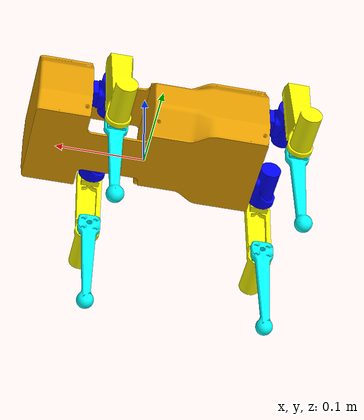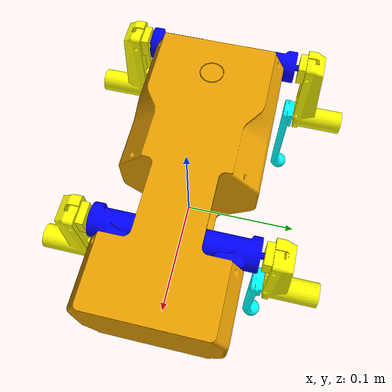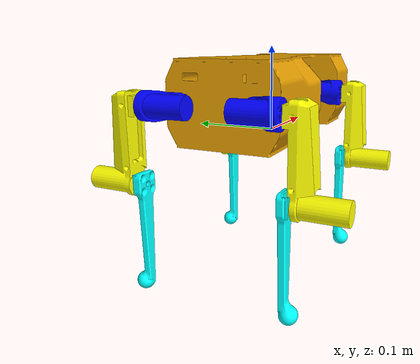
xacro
<?xml version="1.0"?>

<robot name = "pupper" xmlns:xacro="http://www.ros.org/wiki/xacro">

    <xacro:property name = "full_urdf" value = "true"/>

    <xacro:if value = "${full_urdf}">
    <xacro:include filename = "$(find workstation)/pupper_description/colors.xacro"/>
    </xacro:if>

    <xacro:include filename = "$(find workstation)/pupper_description/motor.xacro"/>
    <xacro:include filename = "$(find workstation)/pupper_description/left_leg.xacro"/>
    <xacro:include filename = "$(find workstation)/pupper_description/right_leg.xacro"/>

    <xacro:property name = "PI"            value = "3.14159265359"/>
    <xacro:property name = "VisualPath"    value = "package://workstation/pupper_description/Pupper_STL"/>
    <xacro:property name = "CollisionPath" value = "package://workstation/pupper_description/Pupper_STL"/>

    <!-- Conversions -->
    <xacro:property name = "meshScale_mm"  value = "0.001 0.001 0.001"/>
    <xacro:property name = "meshScale_in"  value = "0.0254 0.0254 0.0254"/>
    <xacro:property name = "meshScale_meters"  value = "1.0 1.0 1.0"/>
    <xacro:property name = "mm2m"  value = "0.001"/>

    <!-- Convert inertia from g*mm^2 to kg*m^2 -->
    <xacro:macro name = "scaleMMOI" params = "ixx iyy izz ixy ixz iyz">
        <xacro:property name = "kConvert" value = "${1e-9}"/>
        <inertia ixx = "${ixx*kConvert}" iyy = "${iyy*kConvert}" izz = "${izz*kConvert}"
                 ixy = "${ixy*kConvert}" iyz = "${iyz*kConvert}" ixz = "${ixz*kConvert}"/>
    </xacro:macro>

    <!-- Convert grams to kilograms -->
    <xacro:macro name = "scaleMass" params = "mass">
        <mass value = "${mass * 0.001}"/>
    </xacro:macro>

    <!-- Convert origin in mm to m-->
    <xacro:macro name = "scaleOrigin" params = "x y z">
        <origin xyz = "${x * mm2m} ${y * mm2m} ${z * mm2m}" rpy = "0 0 0"/>
    </xacro:macro>

    <!-- MEASURED / ESTIMATED PROPERTIES -->
    <!-- Estimated rotor inertia - note Gazebo will unfortunately propagate the inertia to the parent links
         but its the closest we can get to modeling the reflected inertia of the gear box/ rotor-->
    <xacro:property name = "rotor_inertia" value = "${0.0028 * 1e9}"/> <!-- (g*mm^2) -->

    <!-- MASS PROPERTIES FROM SOLIDWORKS -->

    <!-- Bottom PCB -->
    <xacro:property name = "bottom_PCB_mass" value = "1086.5"/> <!-- (g) (lumped with all fixed bodies) -->

    <xacro:property name = "bottom_PCB_com_x" value = "-16.46"/> <!-- (mm) -->
    <xacro:property name = "bottom_PCB_com_y" value = "0"/>
    <xacro:property name = "bottom_PCB_com_z" value = "37.53"/>

    <xacro:property name = "bottom_PCB_ixx" value = "1919398.64"/> <!-- (g*mm^2) -->
    <xacro:property name = "bottom_PCB_iyy" value = "8759021.12"/>
    <xacro:property name = "bottom_PCB_izz" value = "9498546.46"/>
    <xacro:property name = "bottom_PCB_ixy" value = "235.71"/>
    <xacro:property name = "bottom_PCB_ixz" value = "1884.89"/>
    <xacro:property name = "bottom_PCB_iyz" value = "10.99"/>

    <!-- Left Hub -->
    <xacro:property name = "left_hub_mass" value = "109.8"/>

    <xacro:property name = "left_hub_com_x" value = "-29"/> <!-- (mm) -->
    <xacro:property name = "left_hub_com_y" value = "0.31"/>
    <xacro:property name = "left_hub_com_z" value = "0"/>

    <xacro:property name = "left_hub_ixx" value = "${23576.71 + rotor_inertia}"/> <!-- (g*mm^2) -->
    <xacro:property name = "left_hub_iyy" value = "12321.79"/>
    <xacro:property name = "left_hub_izz" value = "27265.99"/>
    <xacro:property name = "left_hub_ixy" value = "-34.26"/>
    <xacro:property name = "left_hub_ixz" value = "-0.01"/>
    <xacro:property name = "left_hub_iyz" value = "0.01"/>

    <!-- Right Hub -->
    <xacro:property name = "right_hub_mass" value = "109.8"/>

    <xacro:property name = "right_hub_com_x" value = "-29"/> <!-- (mm) -->
    <xacro:property name = "right_hub_com_y" value = "-0.31"/>
    <xacro:property name = "right_hub_com_z" value = "0"/>

    <xacro:property name = "right_hub_ixx" value = "${23576.71  + rotor_inertia}"/> <!-- (g*mm^2) -->
    <xacro:property name = "right_hub_iyy" value = "12321.79"/>
    <xacro:property name = "right_hub_izz" value = "27265.99"/>
    <xacro:property name = "right_hub_ixy" value = "-34.26"/>
    <xacro:property name = "right_hub_ixz" value = "-0.01"/>
    <xacro:property name = "right_hub_iyz" value = "-0.02"/>

    <!-- Left Upper Link -->
    <xacro:property name = "left_upper_link_mass" value = "143.55"/>

    <xacro:property name = "left_upper_link_com_x" value = "0"/> <!-- (mm) -->
    <xacro:property name = "left_upper_link_com_y" value = "36.76"/>
    <xacro:property name = "left_upper_link_com_z" value = "-59.83"/>

    <xacro:property name = "left_upper_link_ixx" value = "171730.23"/> <!-- (g*mm^2) -->
    <xacro:property name = "left_upper_link_iyy" value = "141191.83"/>
    <xacro:property name = "left_upper_link_izz" value = "43033.83"/>
    <xacro:property name = "left_upper_link_ixy" value = "0.01"/>
    <xacro:property name = "left_upper_link_ixz" value = "-0.06"/>
    <xacro:property name = "left_upper_link_iyz" value = "45763.54"/>

    <!-- Right Upper Link -->
    <xacro:property name = "right_upper_link_mass" value = "143.55"/>

    <xacro:property name = "right_upper_link_com_x" value = "0"/> <!-- (mm) -->
    <xacro:property name = "right_upper_link_com_y" value = "-36.76"/>
    <xacro:property name = "right_upper_link_com_z" value = "-59.83"/>

    <xacro:property name = "right_upper_link_ixx" value = "171730.23"/> <!-- (g*mm^2) -->
    <xacro:property name = "right_upper_link_iyy" value = "141191.83"/>
    <xacro:property name = "right_upper_link_izz" value = "43033.83"/>
    <xacro:property name = "right_upper_link_ixy" value = "0.01"/>
    <xacro:property name = "right_upper_link_ixz" value = "0.06"/>
    <xacro:property name = "right_upper_link_iyz" value = "-45763.54"/>

    <!-- Left Lower Link -->
    <xacro:property name = "left_lower_link_mass" value = "21.00"/>

    <xacro:property name = "left_lower_link_com_x" value = "-0.22"/> <!-- (mm) -->
    <xacro:property name = "left_lower_link_com_y" value = "-12.19"/>
    <xacro:property name = "left_lower_link_com_z" value = "-33.35"/>

    <xacro:property name = "left_lower_link_ixx" value = "43753.77"/> <!-- (g*mm^2) -->
    <xacro:property name = "left_lower_link_iyy" value = "${44138.15  + rotor_inertia}"/>
    <xacro:property name = "left_lower_link_izz" value = "856.89"/>
    <xacro:property name = "left_lower_link_ixy" value = "12.76"/>
    <xacro:property name = "left_lower_link_ixz" value = "-359.76"/>
    <xacro:property name = "left_lower_link_iyz" value = "456.47"/>

    <!-- Right Lower Link -->
    <xacro:property name = "right_lower_link_mass" value = "21.00"/>

    <xacro:property name = "right_lower_link_com_x" value = "-0.22"/> <!-- (mm) -->
    <xacro:property name = "right_lower_link_com_y" value = "12.19"/>
    <xacro:property name = "right_lower_link_com_z" value = "-33.35"/>

    <xacro:property name = "right_lower_link_ixx" value = "43753.05"/> <!-- (g*mm^2) -->
    <xacro:property name = "right_lower_link_iyy" value = "${44137.54  + rotor_inertia}"/>
    <xacro:property name = "right_lower_link_izz" value = "856.82"/>
    <xacro:property name = "right_lower_link_ixy" value = "-12.74"/>
    <xacro:property name = "right_lower_link_ixz" value = "-360.13"/>
    <xacro:property name = "right_lower_link_iyz" value = "-455.13"/>

    <!-- Battery mass -->
    <!-- Battery location in x of bottom_PCB frame (m)-->

    <!-- KINEMATIC PROPERTIES FROM SOLIDWORKS -->

    <xacro:property name="back_left_hub_relative_origin">
        <xacro:scaleOrigin x = "-122.00" y = "47" z = "43.5"/>
    </xacro:property>
    <!-- Other origins hard coded ... -->

    <!-- SIMULATION SETTINGS -->

    <xacro:property name = "contact_kp">
        <kp>1e6</kp>
    </xacro:property>
    <xacro:property name = "contact_kd">
        <kd>1</kd>
    </xacro:property>
    <xacro:property name = "joint_friction">
        <dynamics damping = "0.001" friction = "0.17"/>
    </xacro:property>
    <!-- Connect the plugin -->
    <gazebo>
        <plugin filename = "libpupper_plugin.so" name = "pupper_plugin"/>
    </gazebo>

    <!-- ROBOT START HERE -->

    <!-- Base link of the robot -->
    <link name = "bottom_PCB">
        <inertial>
            <xacro:scaleOrigin  x = "${bottom_PCB_com_x}"
                                y = "${bottom_PCB_com_y}"
                                z = "${bottom_PCB_com_z}"/>
            <xacro:scaleMass mass = "${bottom_PCB_mass}"/>
            <xacro:scaleMMOI ixx  = "${bottom_PCB_ixx}"
                             iyy  = "${bottom_PCB_iyy}"
                             izz  = "${bottom_PCB_izz}"
                             ixy  = "${bottom_PCB_ixy}"
                             ixz  = "${bottom_PCB_ixz}"
                             iyz  = "${bottom_PCB_iyz}" />
        </inertial>

        <xacro:if value = "${full_urdf}">
        <visual name = "bottom_PCB_visual">
            <geometry>
                <mesh filename = "${VisualPath}/Body/assembly_body_STL.stl" scale = "${meshScale_meters}"/>
            </geometry>
        </visual>

        <collision name = "bottom_PCB_collision">
            <origin xyz = "0.0 0.0 0.04355" rpy = "0 0 0"/>
            <geometry>
                <box size = "0.264 0.124 0.0901"/>
            </geometry>
        </collision>
        </xacro:if>
    </link>

    <!-- Connect battery to bottom PCB -->

    <!-- back left leg -->
    <xacro:leftLeg name = "back" parent = "bottom_PCB">
        <xacro:insert_block name = "back_left_hub_relative_origin"/>
        <origin xyz = "-0.0315 0.0215 0" rpy = "0 0 0"/>
        <origin xyz = "0 0.023 -0.080" rpy = "0 0 0"/>
    </xacro:leftLeg>

    <!-- back right leg-->
    <xacro:rightLeg name = "back" parent = "bottom_PCB">
        <origin xyz = "-0.122 -0.047 0.0435" rpy = "0 0 0"/>
        <origin xyz = "-0.0315 -0.0215 0" rpy = "0 0 0"/>
        <origin xyz = "0 -0.023 -0.080" rpy = "0 0 0"/>
    </xacro:rightLeg>

    <!-- front left leg -->
    <xacro:leftLeg name = "front" parent = "bottom_PCB">
        <origin xyz = "0.078 0.047 0.0435" rpy = "0 0 0"/>
        <origin xyz = "-0.0315 0.0215 0" rpy = "0 0 0"/>
        <origin xyz = "0 0.023 -0.080" rpy = "0 0 0"/>
    </xacro:leftLeg>

    <!-- front right leg -->
    <xacro:rightLeg name = "front" parent = "bottom_PCB">
        <origin xyz = "0.078 -0.047 0.0435" rpy = "0 0 0"/>
        <origin xyz = "-0.0315 -0.0215 0" rpy = "0 0 0"/>
        <origin xyz = "0 -0.023 -0.080" rpy = "0 0 0"/>
    </xacro:rightLeg>

</robot>

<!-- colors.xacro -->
<robot name = "common_colors" xmlns:xacro="http://www.ros.org/wiki/xacro">

<material name = "red">
    <color rgba = "1 0 0 1"/>
</material>

<material name = "yellow">
    <color rgba = "1 1 0 1"/>
</material>

<material name = "blue">
    <color rgba = "0 0 1 1"/>
</material>

<material name = "green">
    <color rgba = "0 1 0 1"/>
</material>

<material name = "blueGreen">
    <color rgba = "0 1 1 1"/>
</material>

<material name = "pink">
    <color rgba = "1 0 1 1"/>
</material>

</robot>

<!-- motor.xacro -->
<robot name = "motorXacro" xmlns:xacro="http://www.ros.org/wiki/xacro">

    <xacro:macro name = "motor" params = "name axis fixed_parent revolute_child *revolute_origin">

        <!-- Attach the child link through a revolute joint -->
        <joint name = "${name}_joint" type = "revolute">
            <parent link = "${fixed_parent}"/>
            <child  link = "${revolute_child}"/>
            <xacro:insert_block name = "revolute_origin"/> <!-- transformation from parent origin to child origin -->
            <limit upper = "1e10" lower = "-1e10" effort = "1e6" velocity = "1e6"/>
            <xacro:insert_block name = "joint_friction"/>
            <axis xyz = "${axis}"/>
        </joint>

        <xacro:if value = "${full_urdf}">
        <!-- implicitSpringDamper: prevent crashing when damping is set -->
        <!-- provideFeedback     : allows the joint to publish torque data -->
        <gazebo reference = "${name}_joint">
            <physics>
                <ode>
                    <max_force>50</max_force>
                </ode>
            </physics>
            <provideFeedback>true</provideFeedback>
            <implicitSpringDamper>true</implicitSpringDamper>
        </gazebo>

        <gazebo reference = "${revolute_child}">
            <self_collide>false</self_collide>
        </gazebo>
        </xacro:if>

    </xacro:macro>

</robot>

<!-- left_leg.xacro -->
<robot name = "left_leg_macro" xmlns:xacro="http://www.ros.org/wiki/xacro">

    <!-- Macro for the creation of a leg -->
    <!-- hub_relative_origin is the origin of the hub relative to its parent's origin (the bottom_PCB in this case)
         similarly for the other parts of upper_link and lower_link-->
    <xacro:macro name = "leftLeg" params = "name parent *hub_relative_origin *upper_link_relative_origin *lower_link_relative_origin">

        <!-- Create hub that connects to the motor -->
        <xacro:property name = "hubName" value = "${name}_left_hub"/>
        <link name = "${hubName}">
            <inertial>
                <xacro:scaleOrigin  x = "${left_hub_com_x}"
                                    y = "${left_hub_com_y}"
                                    z = "${left_hub_com_z}"/>
                <xacro:scaleMass mass = "${left_hub_mass}"/>
                <xacro:scaleMMOI ixx  = "${left_hub_ixx}"
                                 iyy  = "${left_hub_iyy}"
                                 izz  = "${left_hub_izz}"
                                 ixy  = "${left_hub_ixy}"
                                 ixz  = "${left_hub_ixz}"
                                 iyz  = "${left_hub_iyz}" />
            </inertial>

            <xacro:if value = "${full_urdf}">
            <visual name = "${hubName}_visual">
                <material name = "blue"/>
                <geometry>
                    <mesh filename = "${VisualPath}/Leg/assembly_hip_left_STL.stl" scale = "${meshScale_meters}"/>
                </geometry>
            </visual>

            </xacro:if>
        </link>

        <!-- Create the upper link portion (the thigh, if you will) -->
        <xacro:property name = "upperName" value = "${name}_left_upper_link"/>
        <link name = "${upperName}">
            <inertial>
                <xacro:scaleOrigin  x = "${left_upper_link_com_x}"
                                    y = "${left_upper_link_com_y}"
                                    z = "${left_upper_link_com_z}"/>
                <xacro:scaleMass mass = "${left_upper_link_mass}"/>
                <xacro:scaleMMOI ixx  = "${left_upper_link_ixx}"
                                 iyy  = "${left_upper_link_iyy}"
                                 izz  = "${left_upper_link_izz}"
                                 ixy  = "${left_upper_link_ixy}"
                                 ixz  = "${left_upper_link_ixz}"
                                 iyz  = "${left_upper_link_iyz}" />
            </inertial>

            <xacro:if value = "${full_urdf}">
            <visual name = "${upperName}_visual">
                <material name = "yellow"/>
                <geometry>
                    <mesh filename = "${VisualPath}/Leg/assembly_upper_link_left_STL.stl" scale = "${meshScale_meters}"/>
                </geometry>
            </visual>

            <collision name = "${upperName}_collision">
                <origin xyz = "0.0 0.0233 -0.080" rpy = "${PI/2} 0 0"/>
                <geometry>
                    <cylinder radius = "0.0095" length = "0.045"/>
                </geometry>
            </collision>
            </xacro:if>
        </link>

        <!-- Create the lower link -->
        <xacro:property name = "lowerName" value = "${name}_left_lower_link"/>

        <link name = "${lowerName}">
            <inertial>
                <xacro:scaleOrigin  x = "${left_lower_link_com_x}"
                                    y = "${left_lower_link_com_y}"
                                    z = "${left_lower_link_com_z}"/>
                <xacro:scaleMass mass = "${left_lower_link_mass}"/>
                <xacro:scaleMMOI ixx  = "${left_lower_link_ixx}"
                                 iyy  = "${left_lower_link_iyy}"
                                 izz  = "${left_lower_link_izz}"
                                 ixy  = "${left_lower_link_ixy}"
                                 ixz  = "${left_lower_link_ixz}"
                                 iyz  = "${left_lower_link_iyz}" />
            </inertial>

            <xacro:if value = "${full_urdf}">
            <visual>
                <material name = "blueGreen"/>
                <geometry>
                    <mesh filename = "${VisualPath}/Leg/assembly_lower_link_left_STL.stl" scale = "${meshScale_meters}"/>
                </geometry>
            </visual>

            <collision name = "${lowerName}_collision">
                <origin xyz = "0.0 -0.0095 -.11" />
                <geometry>
                    <box size = "0.00001 0.00001 0.00001"/>
                </geometry>
            </collision>
            </xacro:if>
        </link>

        <xacro:if value = "${full_urdf}">
        <gazebo reference="${name}_left_lower_link">
            <collision>
                <surface>
                    <contact>
                        <ode>
                            <xacro:insert_block name = "contact_kp" />
                            <xacro:insert_block name = "contact_kd" />
                        </ode>
                    </contact>
                    <friction>
                        <ode>
                            <mu>0.9</mu> <!--floor friction-->
                            <mu2>0.9</mu2>
                        </ode>
                    </friction>
                </surface>
            </collision>
        </gazebo>
        </xacro:if>

        <!-- Connect leg to parent with a motor -->
        <xacro:motor name = "${name}_left_hip" axis = "-1 0 0" fixed_parent = "${parent}" revolute_child = "${hubName}">
            <xacro:insert_block name = "hub_relative_origin"/>
        </xacro:motor>

        <!-- Join the Hub and the Upper Link with a motor -->
        <xacro:motor name = "${name}_left_shoulder" axis = "0 1 0" fixed_parent = "${hubName}" revolute_child = "${upperName}">
            <xacro:insert_block name = "upper_link_relative_origin"/>
        </xacro:motor>

        <!-- Connect Upper Link and Lower Link with a motor -->
        <xacro:motor name = "${name}_left_elbow" axis = "0 -1 0" fixed_parent = "${upperName}" revolute_child = "${lowerName}">
            <xacro:insert_block name = "lower_link_relative_origin"/>
        </xacro:motor>

    </xacro:macro>
</robot>

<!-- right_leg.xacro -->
<robot name = "right_leg_macro" xmlns:xacro="http://www.ros.org/wiki/xacro">

    <!-- Macro for the creation of a leg -->
    <!-- hub_relative_origin is the origin of the hub relative to its parent's origin (the bottom_PCB in this case)
         similarly for the other parts of upper_link and lower_link-->
    <xacro:macro name = "rightLeg" params = "name parent *hub_relative_origin *upper_link_relative_origin *lower_link_relative_origin">

        <!-- Create hub that connects to the motor -->
        <xacro:property name = "hubName" value = "${name}_right_hub"/>
        <link name = "${hubName}">
            <inertial>
                <xacro:scaleOrigin  x = "${right_hub_com_x}"
                                    y = "${right_hub_com_y}"
                                    z = "${right_hub_com_z}"/>
                <xacro:scaleMass mass = "${right_hub_mass}"/>
                <xacro:scaleMMOI ixx  = "${right_hub_ixx}"
                                 iyy  = "${right_hub_iyy}"
                                 izz  = "${right_hub_izz}"
                                 ixy  = "${right_hub_ixy}"
                                 ixz  = "${right_hub_ixz}"
                                 iyz  = "${right_hub_iyz}" />
            </inertial>

            <xacro:if value = "${full_urdf}">
            <visual name = "${hubName}_visual">
                <material name = "blue"/>
                <geometry>
                    <mesh filename = "${VisualPath}/Leg/assembly_hip_right_STL.stl" scale = "${meshScale_meters}"/>
                </geometry>
            </visual>

            </xacro:if>
        </link>

        <!-- Create the upper link portion (the thigh, if you will) -->
        <xacro:property name = "upperName" value = "${name}_right_upper_link"/>
        <link name = "${upperName}">
            <inertial>
                <xacro:scaleOrigin  x = "${right_upper_link_com_x}"
                                    y = "${right_upper_link_com_y}"
                                    z = "${right_upper_link_com_z}"/>
                <xacro:scaleMass mass = "${right_upper_link_mass}"/>
                <xacro:scaleMMOI ixx  = "${right_upper_link_ixx}"
                                 iyy  = "${right_upper_link_iyy}"
                                 izz  = "${right_upper_link_izz}"
                                 ixy  = "${right_upper_link_ixy}"
                                 ixz  = "${right_upper_link_ixz}"
                                 iyz  = "${right_upper_link_iyz}" />
            </inertial>

            <xacro:if value = "${full_urdf}">
            <visual name = "${upperName}_visual">
                <material name = "yellow"/>
                <geometry>
                    <mesh filename = "${VisualPath}/Leg/assembly_upper_link_right_STL.stl" scale = "${meshScale_meters}"/>
                </geometry>
            </visual>

            <collision name = "${upperName}_collision">
                <origin xyz = "0.0 -0.0233 -0.080" rpy = "${PI/2} 0 0"/>
                <geometry>
                    <cylinder radius = "0.0095" length = "0.045"/>
                </geometry>
            </collision>
            </xacro:if>
        </link>

        <!-- Create the lower link -->
        <xacro:property name = "lowerName" value = "${name}_right_lower_link"/>

        <link name = "${lowerName}">
            <inertial>
                <xacro:scaleOrigin  x = "${right_lower_link_com_x}"
                                    y = "${right_lower_link_com_y}"
                                    z = "${right_lower_link_com_z}"/>
                <xacro:scaleMass mass = "${right_lower_link_mass}"/>
                <xacro:scaleMMOI ixx  = "${right_lower_link_ixx}"
                                 iyy  = "${right_lower_link_iyy}"
                                 izz  = "${right_lower_link_izz}"
                                 ixy  = "${right_lower_link_ixy}"
                                 ixz  = "${right_lower_link_ixz}"
                                 iyz  = "${right_lower_link_iyz}" />
            </inertial>

            <xacro:if value = "${full_urdf}">
            <visual>
                <material name = "blueGreen"/>
                <geometry>
                    <mesh filename = "${VisualPath}/Leg/assembly_lower_link_right_STL.stl" scale = "${meshScale_meters}"/>
                </geometry>
            </visual>

            <collision name = "${lowerName}_collision">
                <origin xyz = "0.0 0.0095 -.11" />
                <geometry>
                    <box size = "0.00001 0.00001 0.00001"/>
                </geometry>
            </collision>
            </xacro:if>
        </link>

        <xacro:if value = "${full_urdf}">
        <gazebo reference="${name}_left_lower_link">
            <collision>
                <surface>
                    <contact>
                        <ode>
                            <xacro:insert_block name = "contact_kp" />
                            <xacro:insert_block name = "contact_kd" />
                        </ode>
                    </contact>
                    <friction>
                        <ode>
                            <mu>0.9</mu> <!--floor friction-->
                            <mu2>0.9</mu2>
                        </ode>
                    </friction>
                </surface>
            </collision>
        </gazebo>
        </xacro:if>

        <!-- Connect leg to parent with a motor -->
        <xacro:motor name = "${name}_right_hip" axis = "-1 0 0" fixed_parent = "${parent}" revolute_child = "${hubName}">
            <xacro:insert_block name = "hub_relative_origin"/>
        </xacro:motor>

        <!-- Join the Hub and the Upper Link with a motor -->
        <xacro:motor name = "${name}_right_shoulder" axis = "0 -1 0" fixed_parent = "${hubName}" revolute_child = "${upperName}">
            <xacro:insert_block name = "upper_link_relative_origin"/>
        </xacro:motor>

        <!-- Connect Upper Link and Lower Link with a motor -->
        <xacro:motor name = "${name}_right_elbow" axis = "0 1 0" fixed_parent = "${upperName}" revolute_child = "${lowerName}">
            <xacro:insert_block name = "lower_link_relative_origin"/>
        </xacro:motor>

    </xacro:macro>
</robot>
